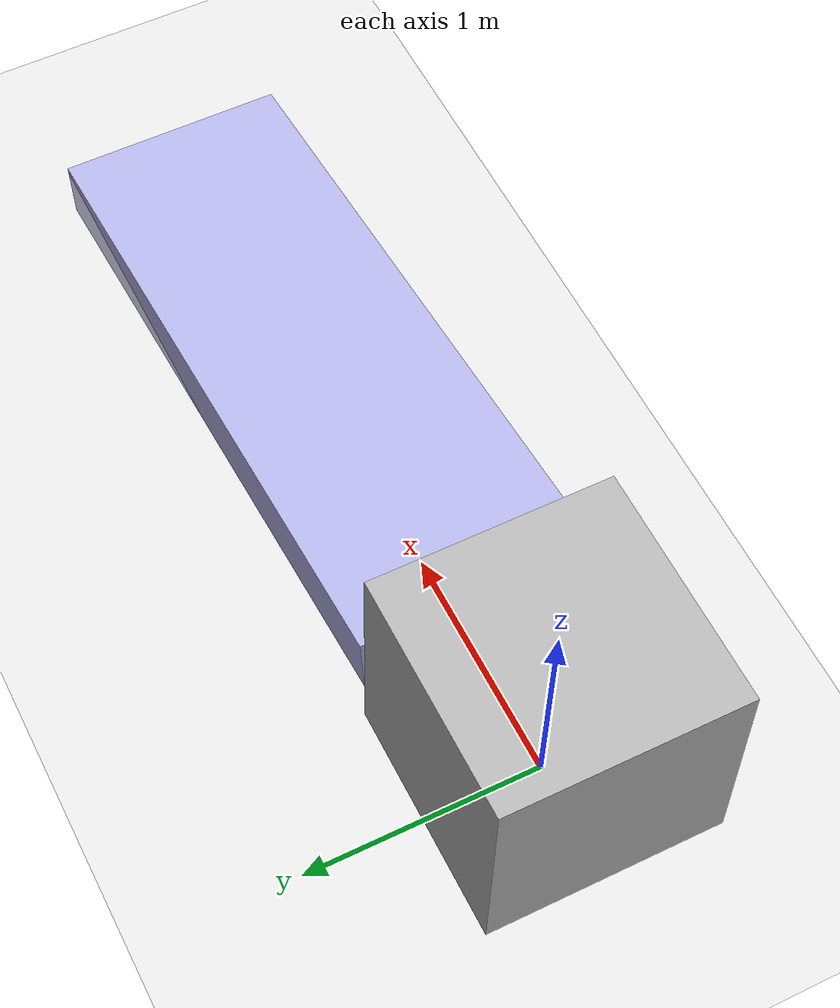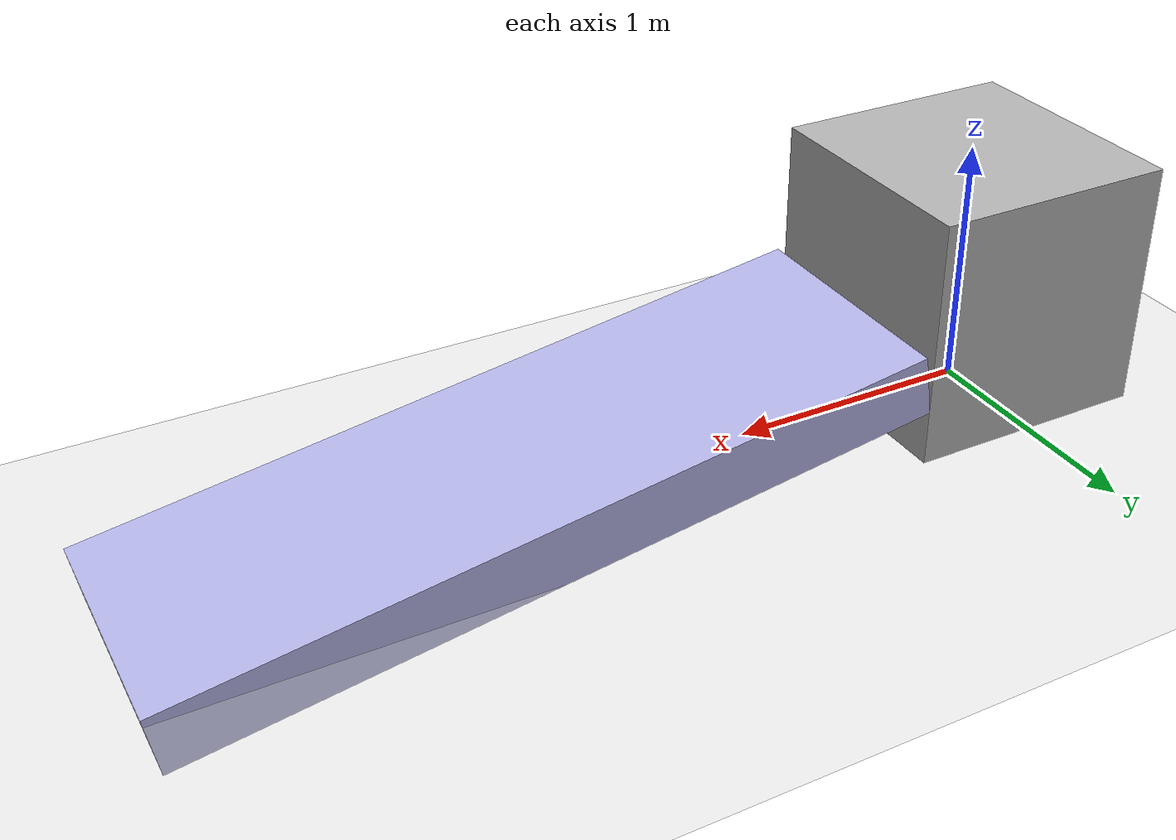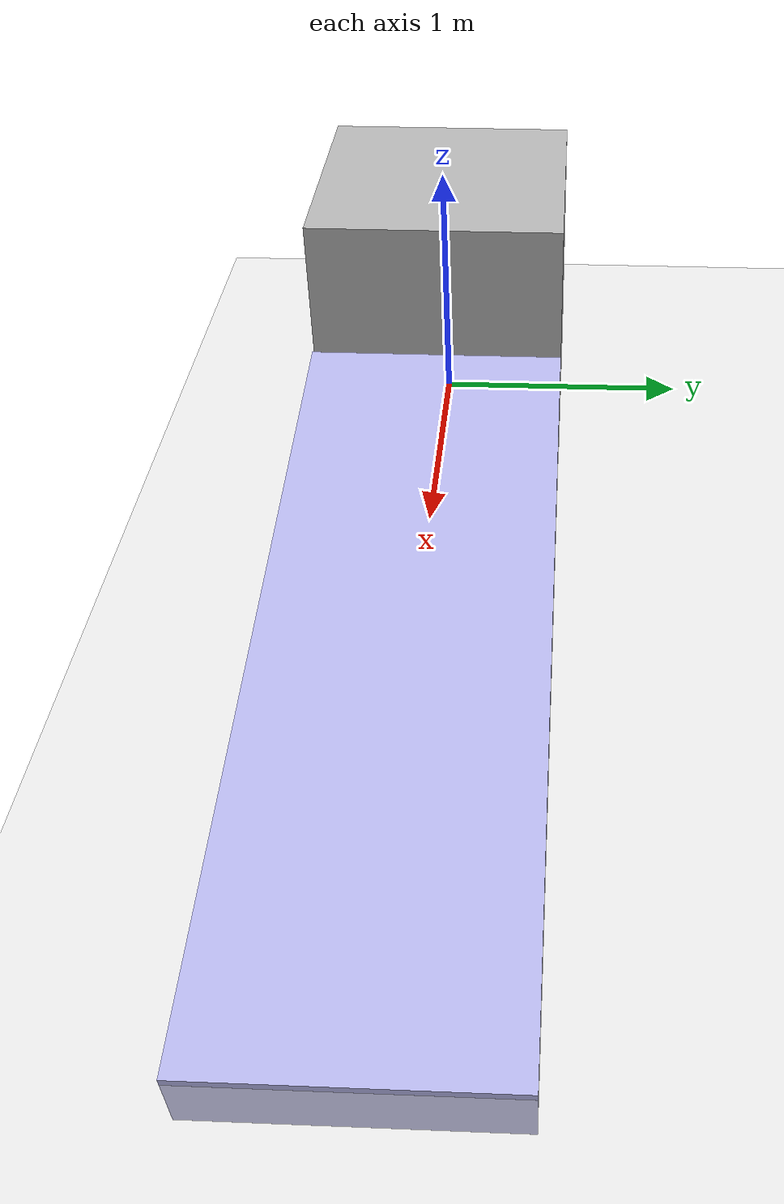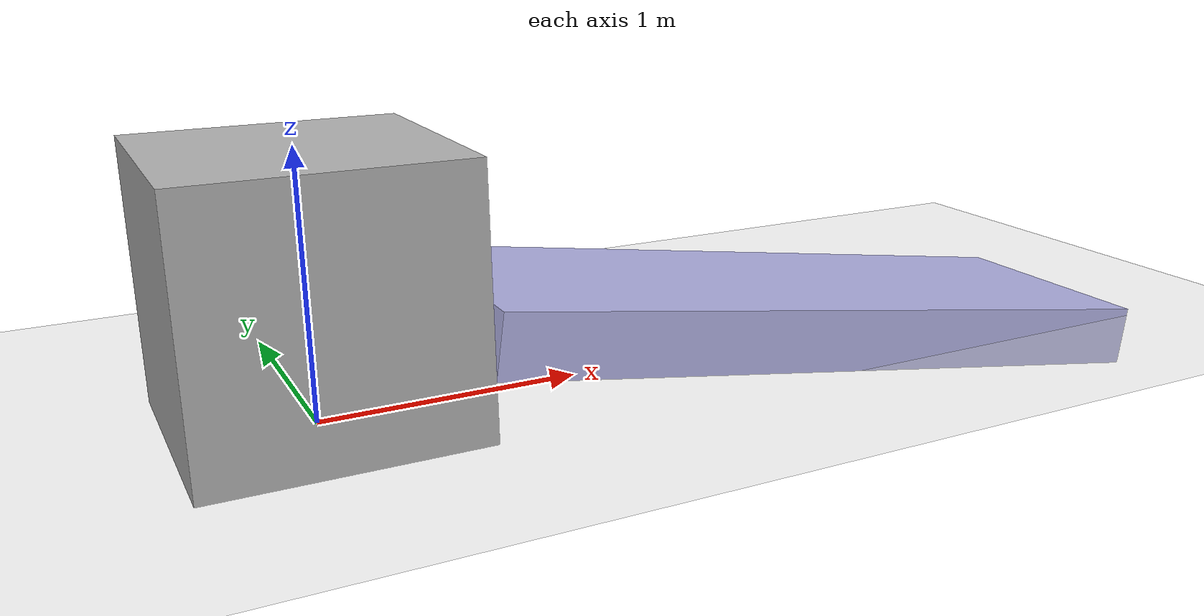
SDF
<?xml version="1.0"?>
<sdf version="1.11">
    <world name="contact_world">
        <!-- A global light source -->
        <include>
            <uri>
                https://fuel.gazebosim.org/1.0/OpenRobotics/models/Sun
            </uri>
        </include>

        <!-- A ground plane -->
        <include>
            <uri>
                https://fuel.gazebosim.org/1.0/OpenRobotics/models/Ground Plane
            </uri>
        </include>

        <!-- Box for testing contact -->
        <model name="contact_box">
            <pose>0 0 0.5 0 0 0</pose>
            <static>false</static>
            <link name="link">
                <collision name="collision">
                    <geometry>
                        <box>
                            <size>1 1 1</size>
                        </box>
                    </geometry>
                </collision>
                <sensor name="contact_sensor" type="contact">
                    <update_rate>1000</update_rate>
                    <visualize>true</visualize>
                    <always_on>true</always_on>
                    <contact>
                        <collision>collision</collision>
                        <topic>contact</topic>
                    </contact>
                </sensor>
                <visual name="visual">
                    <geometry>
                        <box>
                            <size>1 1 1</size>
                        </box>
                    </geometry>
                    <material>
                        <ambient>0.3 0.3 0.3 1</ambient>
                        <diffuse>0.7 0.7 0.7 1</diffuse>
                        <specular>0.01 0.01 0.01 1</specular>
                    </material>
                </visual>
            </link>
        </model>

        <!-- Ramp for testing contacts -->
        <model name="ramp">
            <pose>2 0 0.125 0 0.15 0</pose>
            <static>false</static>
            <link name="link">
                <collision name="collision">
                    <geometry>
                        <box>
                            <size>3 1 0.25</size>
                        </box>
                    </geometry>
                </collision>
                <visual name="visual">
                    <geometry>
                        <box>
                            <size>3 1 0.25</size>
                        </box>
                    </geometry>
                    <material>
                        <ambient>0.3 0.3 0.8 1</ambient>
                        <diffuse>0.7 0.7 0.9 1</diffuse>
                    </material>
                </visual>
            </link>
        </model>

        <plugin
            filename="gz-sim-physics-system"
            name="gz::sim::systems::Physics">
        </plugin>
        <plugin
            filename="gz-sim-user-commands-system"
            name="gz::sim::systems::UserCommands">
        </plugin>
        <plugin
            filename="gz-sim-scene-broadcaster-system"
            name="gz::sim::systems::SceneBroadcaster">
        </plugin>
        <plugin
            filename="gz-sim-sensors-system"
            name="gz::sim::systems::Sensors">
            <render_engine>ogre2</render_engine>
        </plugin>

        <plugin
            filename="gz-sim-contact-system"
            name="gz::sim::systems::Contact">
        </plugin>

        <physics type="ode">
            <max_step_size>0.001</max_step_size>
            <real_time_factor>1</real_time_factor>
            <real_time_update_rate>1000</real_time_update_rate>
        </physics>
    </world>
</sdf>
